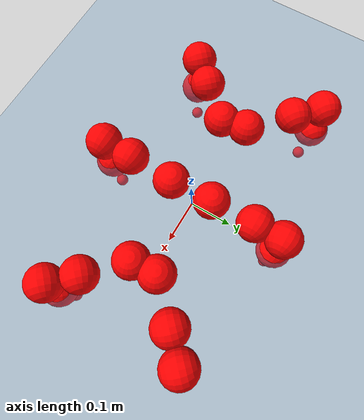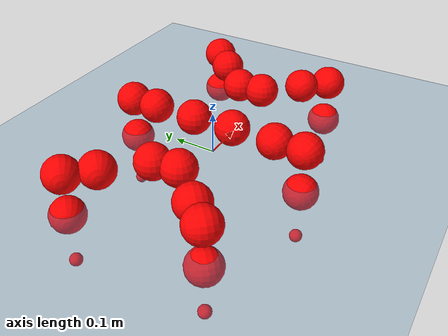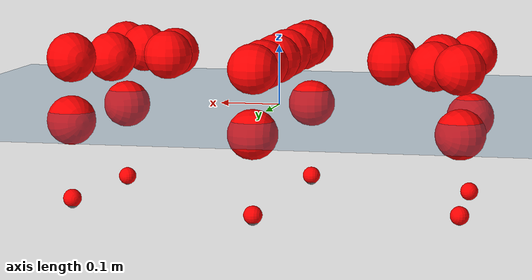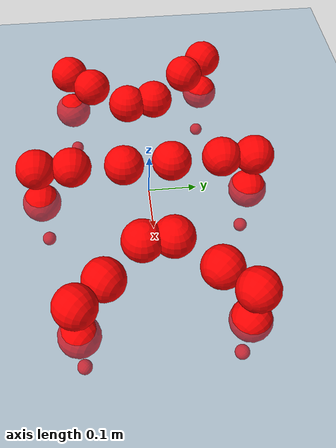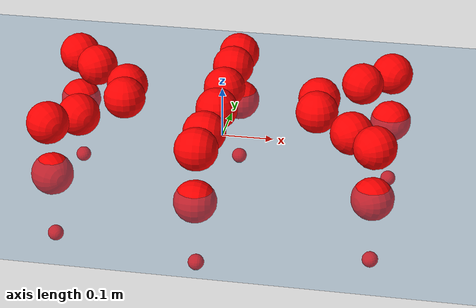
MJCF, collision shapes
<mujoco model="Golem">
  <compiler angle="radian" assetdir="assets" balanceinertia="true" inertiafromgeom="false"/>

  <option timestep="0.005" density="1.2" viscosity="2e-05"/>

  <size nkey="1"/>

  <visual>
    <quality shadowsize="8192"/>
    <map shadowclip="0.5"/>
  </visual>

  <default>
    <default class="/">
      <joint armature="0.01" damping="0.01" frictionloss="0.01"/>
      <geom contype="0" conaffinity="0" group="1" solref="-1000 -80"/>
      <site size="0.01 0.005 0.005" group="5"/>
      <general forcelimited="true" biastype="affine" gainprm="25" biasprm="0 -25 -0.5"/>
      <default class="visual">
        <geom type="mesh" group="2"/>
      </default>
      <default class="collision">
        <geom group="3"/>
      </default>
      <default class="foot">
        <geom size="0.01 0 0" condim="6" group="4" priority="1" solimp="0.015 1 0.01"/>
      </default>
      <default class="reward_collision_sphere">
        <geom group="5" rgba="1 0 0 1"/>
      </default>
    </default>
  </default>

  <asset>
    <texture type="skybox" colorspace="auto" name="//unnamed_texture_0" builtin="gradient" rgb1="0.95 0.95 0.95" rgb2="0.95 0.95 0.95" width="100" height="600"/>
    <texture type="2d" colorspace="auto" name="texplane" builtin="checker" rgb1="0.345 0.575 0.748" rgb2="0.345 0.575 0.748" markrgb="1 1 1" width="512" height="512"/>
    <material name="MatPlane" class="/" texture="texplane" texuniform="true" texrepeat="2 2" specular="0.9"/>
    <mesh name="body" class="/" file="body.stl" scale="0.001 0.001 0.001"/>
    <mesh name="coxa" class="/" file="coxa.stl" scale="0.001 0.001 0.001"/>
    <mesh name="femur" class="/" file="femur.stl" scale="0.001 0.001 0.001"/>
    <mesh name="tibia" class="/" file="tibia.stl" scale="0.001 0.001 0.001"/>
    <mesh name="tarsus" class="/" file="tarsus.stl" scale="0.001 0.001 0.001"/>
  </asset>

  <worldbody>
    <geom name="floor" class="/" size="100 100 0.125" type="plane" group="0" material="MatPlane"/>
    <light name="toplight_shadow" class="/" pos="0 0 5" dir="0.0990148 0.0990148 -0.990148" type="directional" ambient="0.04 0.04 0.04" diffuse="0.55 0.55 0.55" specular="0.12 0.12 0.12"/>
    <light name="toplight_fill" class="/" pos="0 0 5" dir="0.0990148 0.0990148 -0.990148" type="directional" castshadow="false" ambient="0.04 0.04 0.04" diffuse="0.3 0.3 0.3" specular="0.08 0.08 0.08"/>
    <body name="trunk" pos="-0.00251697 9.62491e-05 0.00198911" quat="1 0.000184013 -0.00024638 0.000342762">
      <inertial pos="0.00265632 -6.578e-06 -0.00236032" quat="0.999986 -8.51545e-06 0.000260333 -0.00525998" mass="3.97696" diaginertia="0.0266463 0.00113884 0.0265915"/>
      <joint name="//unnamed_joint_0" type="free"/>
      <geom name="//unnamed_geom_1" class="/" pos="0 0 0.0773012" quat="1 0 0 0" type="mesh" rgba="0.9 0.9 0.9 1" mesh="body"/>
      <site name="imu" class="/" pos="0.158152 -0.00292695 0.133338" size="0.0102063"/>
      <camera name="track" class="/" pos="0 -1.2914 0" quat="0.707107 0.707107 0 0" mode="trackcom"/>
      <camera name="ego_camera" class="/" pos="0.157085 0 0.120783" quat="-0.5 -0.5 0.5 0.5"/>
      <body name="coxa_RR" pos="-0.210769 -0.0553651 0.0777479" quat="0.382776 -0.000304048 0.000371786 -0.923841">
        <inertial pos="0.000974482 0.00176009 0.00102095" quat="0.999948 0.00965736 -0.0031049 0.000769724" mass="0.220261" diaginertia="0.0263415 0.00115853 0.027604"/>
        <joint name="coxa_joint_RR" class="/" pos="0 0 0" axis="0.00106219 -0.0173576 -0.999849" stiffness="0.000712719" range="-3.14099 3.1104" armature="0.009112" damping="0.00714568" frictionloss="0.0107387"/>
        <geom name="//unnamed_geom_2" class="/" type="mesh" rgba="0.2 0.2 0.2 1" mesh="coxa"/>
        <geom name="//unnamed_geom_3" class="reward_collision_sphere" size="0.040825" pos="-0.0362504 0 0"/>
        <body name="femur_RR" pos="0.0681735 0.00385233 -0.00641704" quat="0.500213 -0.499573 0.499312 0.5009">
          <inertial pos="-0.00253316 0.00184421 -0.00225458" quat="0.999993 -0.00266222 0.000977322 -0.00255741" mass="0.214086" diaginertia="0.0257377 0.00110442 0.0254423"/>
          <joint name="femur_joint_RR" class="/" pos="0 0 0" axis="-0.00108796 -0.000814637 -0.999999" range="-3.09147 3.15975" armature="0.00953208" damping="0.0257111" frictionloss="0.0107999"/>
          <geom name="//unnamed_geom_4" class="/" type="mesh" rgba="0.9 0.9 0.9 1" mesh="femur"/>
          <geom name="//unnamed_geom_5" class="reward_collision_sphere" size="0.040825"/>
          <body name="tibia_RR" pos="-0.00219434 -0.0686263 0.00146608" quat="0.000973555 0.999999 -7.11574e-05 0.000363003">
            <inertial pos="0.000365601 -0.00149192 9.32286e-05" quat="0.999992 -0.00139342 0.0036612 -0.000668418" mass="0.212963" diaginertia="0.0249911 0.00109267 0.0247564"/>
            <joint name="tibia_joint_RR" class="/" pos="0 0 0" axis="0.00508579 0.00991578 0.999938" stiffness="0.00851164" range="-3.10741 3.08436" armature="0.00977597" damping="0.00480376" frictionloss="0.010535"/>
            <geom name="//unnamed_geom_6" class="/" type="mesh" rgba="0.2 0.2 0.2 1" mesh="tibia"/>
            <geom name="//unnamed_geom_7" class="reward_collision_sphere" size="0.040825"/>
            <body name="tarsus_RR" pos="0.107582 -0.0026388 -0.00318392" quat="0.999999 0.000257602 0.00103274 -0.000430762">
              <inertial pos="0.0756277 -0.00067157 -0.000937838" quat="0.48987 0.499203 0.502199 0.508546" mass="0.214629" diaginertia="0.0265939 0.00117924 0.0263187"/>
              <joint name="tarsus_joint_RR" class="/" pos="0 0 0" axis="0.00424901 0.00139464 0.99999" stiffness="0.0156655" range="-3.11291 3.14705" armature="0.0107212" damping="0.017896" frictionloss="0.0104707"/>
              <geom name="//unnamed_geom_8" class="/" type="mesh" rgba="0.9 0.9 0.9 1" mesh="tarsus"/>
              <geom name="foot_1" class="foot" size="0.00955628" pos="0.135335 0 0" quat="0 -0.707107 0 0.707107"/>
              <geom name="//unnamed_geom_10" class="reward_collision_sphere" size="0.040825"/>
              <geom name="//unnamed_geom_11" class="reward_collision_sphere" size="0.0153094" pos="0.129897 0 0"/>
              <site name="foot_1" class="foot" pos="0.135335 0 0" quat="0 -0.707107 0 0.707107" size="0.0102063"/>
            </body>
          </body>
        </body>
      </body>
      <body name="coxa_RM" pos="0.000759069 -0.0873161 0.0797967" quat="0.707114 0.00110779 0.000482536 -0.707098">
        <inertial pos="0.000458455 2.13702e-05 -0.00219407" quat="0.99998 0.00270522 -0.00545036 0.00183572" mass="0.207224" diaginertia="0.0261209 0.00110295 0.0242709"/>
        <joint name="coxa_joint_RM" class="/" pos="0 0 0" axis="-0.0045972 0.00101595 -0.999989" range="-3.08837 3.15143" armature="0.00870802" damping="0.022609" frictionloss="0.0104352"/>
        <geom name="//unnamed_geom_12" class="/" type="mesh" rgba="0.2 0.2 0.2 1" mesh="coxa"/>
        <geom name="//unnamed_geom_13" class="reward_collision_sphere" size="0.040825" pos="-0.0362504 0 0"/>
        <body name="femur_RM" pos="0.0697526 -0.00308696 0.0013089" quat="0.500009 -0.499967 0.499776 0.500248">
          <inertial pos="0.00226355 -0.0029086 0.00243172" quat="0.999997 -0.00197307 0.00131356 -0.000822474" mass="0.21462" diaginertia="0.0257856 0.0011192 0.0257252"/>
          <joint name="femur_joint_RM" class="/" pos="0 0 0" axis="-0.0015491 -0.00094647 -0.999998" stiffness="0.00982331" range="-3.1229 3.15244" armature="0.0108434" damping="0.00794212" frictionloss="0.00884253"/>
          <geom name="//unnamed_geom_14" class="/" type="mesh" rgba="0.9 0.9 0.9 1" mesh="femur"/>
          <geom name="//unnamed_geom_15" class="reward_collision_sphere" size="0.040825"/>
          <body name="tibia_RM" pos="-0.000391483 -0.0709477 -0.00122034" quat="-0.000601118 1 0.000566861 -0.000145427">
            <inertial pos="-0.00323194 -0.00312751 -0.000302903" quat="0.99994 0.0040192 0.00426539 -0.009286" mass="0.206598" diaginertia="0.0249547 0.00109873 0.0257853"/>
            <joint name="tibia_joint_RM" class="/" pos="0 0 0" axis="-0.00401456 0.00889917 0.999952" range="-3.1146 3.2054" armature="0.0113665" damping="0.0150782" frictionloss="0.0101275"/>
            <geom name="//unnamed_geom_16" class="/" type="mesh" rgba="0.2 0.2 0.2 1" mesh="tibia"/>
            <geom name="//unnamed_geom_17" class="reward_collision_sphere" size="0.040825"/>
            <body name="tarsus_RM" pos="0.107909 0.00123872 0.00274228" quat="1 9.96458e-05 0.000441503 -0.00020212">
              <inertial pos="0.075194 -0.0020334 0.00312601" quat="0.500959 0.501996 0.49791 0.499125" mass="0.216506" diaginertia="0.0256534 0.00113646 0.0245913"/>
              <joint name="tarsus_joint_RM" class="/" pos="0 0 0" axis="-2.41422e-05 0.0112039 0.999937" range="-3.12141 3.09987" armature="0.011284" damping="0.0181225" frictionloss="0.0103775"/>
              <geom name="//unnamed_geom_18" class="/" type="mesh" rgba="0.9 0.9 0.9 1" mesh="tarsus"/>
              <geom name="foot_2" class="foot" size="0.0112495" pos="0.135335 0 0" quat="0 -0.707107 0 0.707107"/>
              <geom name="//unnamed_geom_20" class="reward_collision_sphere" size="0.040825"/>
              <geom name="//unnamed_geom_21" class="reward_collision_sphere" size="0.0153094" pos="0.129897 0 0"/>
              <site name="foot_2" class="foot" pos="0.135335 0 0" quat="0 -0.707107 0 0.707107" size="0.0102063"/>
            </body>
          </body>
        </body>
      </body>
      <body name="coxa_RF" pos="0.216836 -0.0565478 0.0798608" quat="0.923821 0.000347139 -0.000617428 -0.382823">
        <inertial pos="0.000794833 0.00238809 0.000204311" quat="0.999947 -0.00110327 0.0101537 -0.00113679" mass="0.210657" diaginertia="0.0242077 0.00112178 0.0242079"/>
        <joint name="coxa_joint_RF" class="/" pos="0 0 0" axis="-0.00332311 0.00590386 -0.999977" range="-3.17749 3.14279" armature="0.00997386" damping="0.0170168" frictionloss="0.0110944"/>
        <geom name="//unnamed_geom_22" class="/" type="mesh" rgba="0.2 0.2 0.2 1" mesh="coxa"/>
        <geom name="//unnamed_geom_23" class="reward_collision_sphere" size="0.040825" pos="-0.0362504 0 0"/>
        <body name="femur_RF" pos="0.0699117 0.000347533 -0.00188597" quat="0.499987 -0.499824 0.500008 0.500181">
          <inertial pos="-0.00141179 -0.00269956 0.00104986" quat="0.999985 0.00269637 -0.000932934 -0.00476541" mass="0.220624" diaginertia="0.0261514 0.001124 0.0259554"/>
          <joint name="femur_joint_RF" class="/" pos="0 0 0" axis="0.000329984 2.80101e-05 -1" stiffness="0.0141225" range="-3.08568 3.1679" armature="0.011683" damping="0.00320475" frictionloss="0.011511"/>
          <geom name="//unnamed_geom_24" class="/" type="mesh" rgba="0.9 0.9 0.9 1" mesh="femur"/>
          <geom name="//unnamed_geom_25" class="reward_collision_sphere" size="0.040825"/>
          <body name="tibia_RF" pos="-0.000152687 -0.0712898 -0.00208761" quat="-0.000267909 1 0.00023255 -3.13114e-05">
            <inertial pos="0.00131909 -0.00194448 -0.000326638" quat="1 -0.000349635 0.000171264 -0.000685081" mass="0.209836" diaginertia="0.0250811 0.00110252 0.0251078"/>
            <joint name="tibia_joint_RF" class="/" pos="0 0 0" axis="0.00682416 0.00855687 0.99994" range="-3.10613 3.13751" armature="0.0101082" damping="0.00614861" frictionloss="0.0112127"/>
            <geom name="//unnamed_geom_26" class="/" type="mesh" rgba="0.2 0.2 0.2 1" mesh="tibia"/>
            <geom name="//unnamed_geom_27" class="reward_collision_sphere" size="0.040825"/>
            <body name="tarsus_RF" pos="0.106105 -0.00031719 0.000899722" quat="1 4.66704e-06 0.000248617 -0.000482585">
              <inertial pos="0.0732443 -0.00202493 0.000647552" quat="0.49267 0.510928 0.503551 0.492611" mass="0.211849" diaginertia="0.0249565 0.00110549 0.0256024"/>
              <joint name="tarsus_joint_RF" class="/" pos="0 0 0" axis="-0.00260105 0.0106293 0.99994" range="-3.1869 3.13677" armature="0.0111679" damping="0" frictionloss="0.0103557"/>
              <geom name="//unnamed_geom_28" class="/" type="mesh" rgba="0.9 0.9 0.9 1" mesh="tarsus"/>
              <geom name="foot_3" class="foot" size="0.0103578" pos="0.135335 0 0" quat="0 -0.707107 0 0.707107"/>
              <geom name="//unnamed_geom_30" class="reward_collision_sphere" size="0.040825"/>
              <geom name="//unnamed_geom_31" class="reward_collision_sphere" size="0.0153094" pos="0.129897 0 0"/>
              <site name="foot_3" class="foot" pos="0.135335 0 0" quat="0 -0.707107 0 0.707107" size="0.0102063"/>
            </body>
          </body>
        </body>
      </body>
      <body name="coxa_LR" pos="-0.219206 0.0545696 0.0787527" quat="0.38164 0.000200124 -0.000406677 0.924311">
        <inertial pos="0.00297092 -0.00096385 0.000421934" quat="0.999961 0.0046243 -0.0074834 -0.000553342" mass="0.206825" diaginertia="0.0261179 0.0011319 0.0257471"/>
        <joint name="coxa_joint_LR" class="/" pos="0 0 0" axis="0.0089447 -0.0151797 -0.999845" stiffness="0.00617117" range="-3.1221 3.18767" armature="0.0104175" damping="0.00882603" frictionloss="0.0115807"/>
        <geom name="//unnamed_geom_32" class="/" type="mesh" rgba="0.2 0.2 0.2 1" mesh="coxa"/>
        <geom name="//unnamed_geom_33" class="reward_collision_sphere" size="0.040825" pos="-0.0362504 0 0"/>
        <body name="femur_LR" pos="0.076331 0.001472 0.000592157" quat="0.500101 -0.499652 0.499959 0.500287">
          <inertial pos="0.000299928 0.00150954 -0.00146992" quat="0.999999 -0.00119283 0.000582749 -0.000353123" mass="0.214886" diaginertia="0.0272455 0.00114309 0.0255487"/>
          <joint name="femur_joint_LR" class="/" pos="0 0 0" axis="0.00911454 0.00469939 0.999947" range="-3.163 3.12478" armature="0.00842356" damping="0.00307773" frictionloss="0.0102768"/>
          <geom name="//unnamed_geom_34" class="/" type="mesh" rgba="0.9 0.9 0.9 1" mesh="femur"/>
          <geom name="//unnamed_geom_35" class="reward_collision_sphere" size="0.040825"/>
          <body name="tibia_LR" pos="-0.00129562 -0.0707981 -0.00112296" quat="-5.12012e-05 1 -2.82196e-05 0.000120857">
            <inertial pos="0.000303658 0.00152316 -0.000261199" quat="0.999934 -0.000261586 -0.00193083 -0.0113091" mass="0.208044" diaginertia="0.0248245 0.00113684 0.0259938"/>
            <joint name="tibia_joint_LR" class="/" pos="0 0 0" axis="0.00306126 0.00455194 -0.999985" stiffness="0.00879399" range="-3.1504 3.1554" armature="0.0105307" damping="0.023931" frictionloss="0.0108305"/>
            <geom name="//unnamed_geom_36" class="/" type="mesh" rgba="0.2 0.2 0.2 1" mesh="tibia"/>
            <geom name="//unnamed_geom_37" class="reward_collision_sphere" size="0.040825"/>
            <body name="tarsus_LR" pos="0.103044 0.00137135 -0.00145647" quat="1 -0.000420054 -0.000145439 -0.000547333">
              <inertial pos="0.0689078 0.00302512 -0.000570494" quat="0.500201 0.498978 0.500932 0.499888" mass="0.206836" diaginertia="0.0253341 0.00114052 0.0262713"/>
              <joint name="tarsus_joint_LR" class="/" pos="0 0 0" axis="0.00449772 0.00568062 -0.999974" range="-3.15269 3.12383" armature="0.0102733" damping="0.0348176" frictionloss="0.0104146"/>
              <geom name="//unnamed_geom_38" class="/" type="mesh" rgba="0.9 0.9 0.9 1" mesh="tarsus"/>
              <geom name="foot_4" class="foot" size="0.01016" pos="0.135335 0 0" quat="0.707107 0 -0.707107 0"/>
              <geom name="//unnamed_geom_40" class="reward_collision_sphere" size="0.040825"/>
              <geom name="//unnamed_geom_41" class="reward_collision_sphere" size="0.0153094" pos="0.129897 0 0"/>
              <site name="foot_4" class="foot" pos="0.135335 0 0" quat="0.707107 0 -0.707107 0" size="0.0102063"/>
            </body>
          </body>
        </body>
      </body>
      <body name="coxa_LM" pos="-0.00220286 0.0827144 0.0798621" quat="0.707288 0.000108444 0.000309386 0.706925">
        <inertial pos="0.00191184 0.0028315 0.00309952" quat="0.999937 -0.00895285 0.00681399 0.00059122" mass="0.212574" diaginertia="0.0257298 0.00108461 0.0264746"/>
        <joint name="coxa_joint_LM" class="/" pos="0 0 0" axis="-0.00446745 -0.00320626 -0.999985" range="-3.08785 3.08917" armature="0.010224" damping="0.0100723" frictionloss="0.0106771"/>
        <geom name="//unnamed_geom_42" class="/" type="mesh" rgba="0.2 0.2 0.2 1" mesh="coxa"/>
        <geom name="//unnamed_geom_43" class="reward_collision_sphere" size="0.040825" pos="-0.0362504 0 0"/>
        <body name="femur_LM" pos="0.067014 0.0012387 0.000775823" quat="0.49992 -0.499927 0.499987 0.500166">
          <inertial pos="0.000847824 -0.00189144 -0.00126711" quat="0.999991 0.00117536 -0.00105513 -0.00402617" mass="0.209364" diaginertia="0.0251423 0.00113355 0.025951"/>
          <joint name="femur_joint_LM" class="/" pos="0 0 0" axis="0.00139545 -0.00288891 0.999995" range="-3.1138 3.16293" armature="0.0114629" damping="0.0122728" frictionloss="0.0108317"/>
          <geom name="//unnamed_geom_44" class="/" type="mesh" rgba="0.9 0.9 0.9 1" mesh="femur"/>
          <geom name="//unnamed_geom_45" class="reward_collision_sphere" size="0.040825"/>
          <body name="tibia_LM" pos="0.000111111 -0.066937 -0.000839829" quat="0.000885833 0.999999 0.00111367 0.000217466">
            <inertial pos="0.00137677 0.0020449 -0.00070292" quat="0.99991 -0.00432951 -0.012244 -0.00338593" mass="0.22481" diaginertia="0.0266769 0.00118436 0.0269317"/>
            <joint name="tibia_joint_LM" class="/" pos="0 0 0" axis="0.00617099 -0.00308503 -0.999976" stiffness="0.0164455" range="-3.13226 3.12855" armature="0.0106934" damping="0.0179997" frictionloss="0.010573"/>
            <geom name="//unnamed_geom_46" class="/" type="mesh" rgba="0.2 0.2 0.2 1" mesh="tibia"/>
            <geom name="//unnamed_geom_47" class="reward_collision_sphere" size="0.040825"/>
            <body name="tarsus_LM" pos="0.104665 -0.00184321 0.00112252" quat="1 -0.000196668 -0.000144441 -0.000148653">
              <inertial pos="0.0721693 0.000739934 0.000220516" quat="0.490965 0.498883 0.506668 0.503346" mass="0.206268" diaginertia="0.026537 0.00112703 0.0260097"/>
              <joint name="tarsus_joint_LM" class="/" pos="0 0 0" axis="-0.00114016 -0.00567765 -0.999983" range="-3.19589 3.12835" armature="0.00971632" damping="0.0154226" frictionloss="0.0101151"/>
              <geom name="//unnamed_geom_48" class="/" type="mesh" rgba="0.9 0.9 0.9 1" mesh="tarsus"/>
              <geom name="foot_5" class="foot" size="0.0113607" pos="0.135335 0 0" quat="0.707107 0 -0.707107 0"/>
              <geom name="//unnamed_geom_50" class="reward_collision_sphere" size="0.040825"/>
              <geom name="//unnamed_geom_51" class="reward_collision_sphere" size="0.0153094" pos="0.129897 0 0"/>
              <site name="foot_5" class="foot" pos="0.135335 0 0" quat="0.707107 0 -0.707107 0" size="0.0102063"/>
            </body>
          </body>
        </body>
      </body>
      <body name="coxa_LF" pos="0.213532 0.0538478 0.0806878" quat="0.924139 0.000129289 0.000316259 0.382057">
        <inertial pos="0.000602851 -0.000626841 0.000455655" quat="0.999918 0.0103817 -0.00298218 0.00687158" mass="0.204605" diaginertia="0.0254227 0.00113222 0.0247849"/>
        <joint name="coxa_joint_LF" class="/" pos="0 0 0" axis="-0.000335676 -0.000197155 -1" range="-3.09828 3.16092" armature="0.0107063" damping="0.0316375" frictionloss="0.010178"/>
        <geom name="//unnamed_geom_52" class="/" type="mesh" rgba="0.2 0.2 0.2 1" mesh="coxa"/>
        <geom name="//unnamed_geom_53" class="reward_collision_sphere" size="0.040825" pos="-0.0362504 0 0"/>
        <body name="femur_LF" pos="0.0714759 0.000614728 0.00254977" quat="0.499141 -0.49981 0.501002 0.500046">
          <inertial pos="-0.000382239 -0.000227923 -0.00126549" quat="0.999981 0.00449504 0.00247421 0.00344221" mass="0.202432" diaginertia="0.0254502 0.00108137 0.025613"/>
          <joint name="femur_joint_LF" class="/" pos="0 0 0" axis="-0.00155732 -0.00411474 0.99999" range="-3.11525 3.13112" armature="0.0105553" damping="0" frictionloss="0.00989754"/>
          <geom name="//unnamed_geom_54" class="/" type="mesh" rgba="0.9 0.9 0.9 1" mesh="femur"/>
          <geom name="//unnamed_geom_55" class="reward_collision_sphere" size="0.040825"/>
          <body name="tibia_LF" pos="-0.00294934 -0.0742573 -0.000378678" quat="-7.45957e-06 1 -0.000735508 -0.000613344">
            <inertial pos="0.00203532 -0.00323707 0.000135457" quat="0.999967 0.00245664 0.0044805 0.00639343" mass="0.20642" diaginertia="0.0265941 0.00111399 0.0256324"/>
            <joint name="tibia_joint_LF" class="/" pos="0 0 0" axis="0.000134342 -7.30204e-05 -1" stiffness="0.00199318" range="-3.20197 3.18855" armature="0.0095716" damping="0" frictionloss="0.0103067"/>
            <geom name="//unnamed_geom_56" class="/" type="mesh" rgba="0.2 0.2 0.2 1" mesh="tibia"/>
            <geom name="//unnamed_geom_57" class="reward_collision_sphere" size="0.040825"/>
            <body name="tarsus_LF" pos="0.10361 0.000485403 0.000780684" quat="0.999999 0.00106517 -0.000313404 -0.00037963">
              <inertial pos="0.0747005 -0.00185235 -0.00119673" quat="0.500148 0.501536 0.499991 0.49832" mass="0.205199" diaginertia="0.0247843 0.0010849 0.0248051"/>
              <joint name="tarsus_joint_LF" class="/" pos="0 0 0" axis="-0.00172993 0.00124139 -0.999998" stiffness="0.00722587" range="-3.13005 3.13727" armature="0.00978939" damping="0.0307513" frictionloss="0.00879619"/>
              <geom name="//unnamed_geom_58" class="/" type="mesh" rgba="0.9 0.9 0.9 1" mesh="tarsus"/>
              <geom name="foot_6" class="foot" size="0.0113618" pos="0.135335 0 0" quat="0.707107 0 -0.707107 0"/>
              <geom name="//unnamed_geom_60" class="reward_collision_sphere" size="0.040825"/>
              <geom name="//unnamed_geom_61" class="reward_collision_sphere" size="0.0153094" pos="0.129897 0 0"/>
              <site name="foot_6" class="foot" pos="0.135335 0 0" quat="0.707107 0 -0.707107 0" size="0.0102063"/>
            </body>
          </body>
        </body>
      </body>
    </body>
  </worldbody>

  <contact>
    <pair class="/" geom1="floor" geom2="foot_1" name="//unnamed_contact_0"/>
    <pair class="/" geom1="floor" geom2="foot_2" name="//unnamed_contact_1"/>
    <pair class="/" geom1="floor" geom2="foot_3" name="//unnamed_contact_2"/>
    <pair class="/" geom1="floor" geom2="foot_4" name="//unnamed_contact_3"/>
    <pair class="/" geom1="floor" geom2="foot_5" name="//unnamed_contact_4"/>
    <pair class="/" geom1="floor" geom2="foot_6" name="//unnamed_contact_5"/>
  </contact>

  <actuator>
    <general name="coxa_joint_RR" class="/" joint="coxa_joint_RR" forcerange="-7.92631 7.92631" gainprm="25.0908" biasprm="0 -25.0908 -0.53362"/>
    <general name="femur_joint_RR" class="/" joint="femur_joint_RR" forcerange="-7.69068 7.69068" gainprm="25.0908" biasprm="0 -25.0908 -0.53362"/>
    <general name="tibia_joint_RR" class="/" joint="tibia_joint_RR" forcerange="-7.28527 7.28527" gainprm="25.0908" biasprm="0 -25.0908 -0.53362"/>
    <general name="tarsus_joint_RR" class="/" joint="tarsus_joint_RR" forcerange="-7.43261 7.43261" gainprm="25.0908" biasprm="0 -25.0908 -0.53362"/>
    <general name="coxa_joint_RM" class="/" joint="coxa_joint_RM" forcerange="-7.80714 7.80714" gainprm="25.0908" biasprm="0 -25.0908 -0.53362"/>
    <general name="femur_joint_RM" class="/" joint="femur_joint_RM" forcerange="-7.97834 7.97834" gainprm="25.0908" biasprm="0 -25.0908 -0.53362"/>
    <general name="tibia_joint_RM" class="/" joint="tibia_joint_RM" forcerange="-7.70977 7.70977" gainprm="25.0908" biasprm="0 -25.0908 -0.53362"/>
    <general name="tarsus_joint_RM" class="/" joint="tarsus_joint_RM" forcerange="-7.52787 7.52787" gainprm="25.0908" biasprm="0 -25.0908 -0.53362"/>
    <general name="coxa_joint_RF" class="/" joint="coxa_joint_RF" forcerange="-7.62111 7.62111" gainprm="25.0908" biasprm="0 -25.0908 -0.53362"/>
    <general name="femur_joint_RF" class="/" joint="femur_joint_RF" forcerange="-6.6146 6.6146" gainprm="25.0908" biasprm="0 -25.0908 -0.53362"/>
    <general name="tibia_joint_RF" class="/" joint="tibia_joint_RF" forcerange="-7.02222 7.02222" gainprm="25.0908" biasprm="0 -25.0908 -0.53362"/>
    <general name="tarsus_joint_RF" class="/" joint="tarsus_joint_RF" forcerange="-7.19981 7.19981" gainprm="25.0908" biasprm="0 -25.0908 -0.53362"/>
    <general name="coxa_joint_LR" class="/" joint="coxa_joint_LR" forcerange="-7.53104 7.53104" gainprm="25.0908" biasprm="0 -25.0908 -0.53362"/>
    <general name="femur_joint_LR" class="/" joint="femur_joint_LR" forcerange="-7.19557 7.19557" gainprm="25.0908" biasprm="0 -25.0908 -0.53362"/>
    <general name="tibia_joint_LR" class="/" joint="tibia_joint_LR" forcerange="-6.71414 6.71414" gainprm="25.0908" biasprm="0 -25.0908 -0.53362"/>
    <general name="tarsus_joint_LR" class="/" joint="tarsus_joint_LR" forcerange="-7.02177 7.02177" gainprm="25.0908" biasprm="0 -25.0908 -0.53362"/>
    <general name="coxa_joint_LM" class="/" joint="coxa_joint_LM" forcerange="-7.40024 7.40024" gainprm="25.0908" biasprm="0 -25.0908 -0.53362"/>
    <general name="femur_joint_LM" class="/" joint="femur_joint_LM" forcerange="-7.20092 7.20092" gainprm="25.0908" biasprm="0 -25.0908 -0.53362"/>
    <general name="tibia_joint_LM" class="/" joint="tibia_joint_LM" forcerange="-7.42059 7.42059" gainprm="25.0908" biasprm="0 -25.0908 -0.53362"/>
    <general name="tarsus_joint_LM" class="/" joint="tarsus_joint_LM" forcerange="-6.70191 6.70191" gainprm="25.0908" biasprm="0 -25.0908 -0.53362"/>
    <general name="coxa_joint_LF" class="/" joint="coxa_joint_LF" forcerange="-7.49601 7.49601" gainprm="25.0908" biasprm="0 -25.0908 -0.53362"/>
    <general name="femur_joint_LF" class="/" joint="femur_joint_LF" forcerange="-7.26349 7.26349" gainprm="25.0908" biasprm="0 -25.0908 -0.53362"/>
    <general name="tibia_joint_LF" class="/" joint="tibia_joint_LF" forcerange="-7.42116 7.42116" gainprm="25.0908" biasprm="0 -25.0908 -0.53362"/>
    <general name="tarsus_joint_LF" class="/" joint="tarsus_joint_LF" forcerange="-7.6549 7.6549" gainprm="25.0908" biasprm="0 -25.0908 -0.53362"/>
  </actuator>

  <sensor>
    <gyro site="imu" name="imu_angular_velocity"/>
    <velocimeter site="imu" name="imu_linear_velocity"/>
    <framelinvel objtype="site" objname="foot_1" name="foot_1_global_linear_velocity"/>
    <framelinvel objtype="site" objname="foot_2" name="foot_2_global_linear_velocity"/>
    <framelinvel objtype="site" objname="foot_3" name="foot_3_global_linear_velocity"/>
    <framelinvel objtype="site" objname="foot_4" name="foot_4_global_linear_velocity"/>
    <framelinvel objtype="site" objname="foot_5" name="foot_5_global_linear_velocity"/>
    <framelinvel objtype="site" objname="foot_6" name="foot_6_global_linear_velocity"/>
  </sensor>

  <keyframe>
    <key name="home" qpos="0 0 0.1457 1 0 0 0 0 0 0 0 0 0 0 0 0 0 0 0 0 0 0 0 0 0 0 0 0 0 0 0"/>
  </keyframe>
</mujoco>
